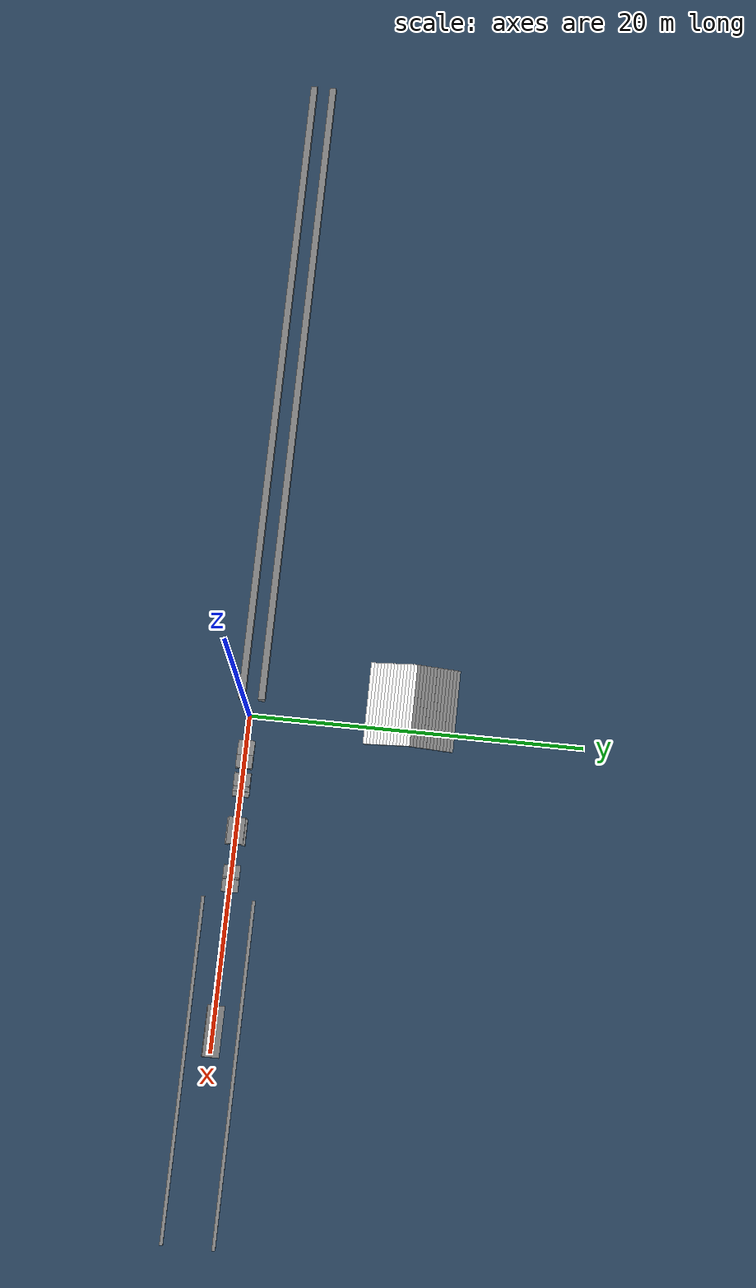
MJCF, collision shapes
<mujoco model="go2 scene">
  <include file="dog.xml"/>

  <statistic center="0 0 0.1" extent="0.8"/>

  <visual>
    <headlight diffuse="0.6 0.6 0.6" ambient="0.3 0.3 0.3" specular="0 0 0"/>
    <rgba haze="0.15 0.25 0.35 1"/>
    <global azimuth="-130" elevation="-20"/>
  </visual>

  <asset>
    <texture type="skybox" builtin="gradient" rgb1="0.3 0.5 0.7" rgb2="0 0 0" width="512" height="3072"/>
    <texture type="2d" name="groundplane" builtin="checker" mark="edge" rgb1="0.2 0.3 0.4" rgb2="0.1 0.2 0.3"
      markrgb="0.8 0.8 0.8" width="300" height="300"/>
    <material name="groundplane" texture="groundplane" texuniform="true" texrepeat="5 5" reflectance="0.2"/>

  </asset>

  <worldbody>
    <light pos="0 0 1.5" dir="0 0 -1" directional="true"/>
    <geom name="floor" size="0 0 0.05" type="plane" material="groundplane" friction="1 0.1 0.01"/>
    <!-- 场地 -->
    <geom pos="-21 0.6 0.04" type="box"  size="20 0.2 0.5" quat="1.0 0 0 0"/>
    <geom pos="-21 -0.6 0.04" type="box"  size="20 0.2 0.5" quat="1.0 0 0 0"/>
    <geom pos="21 1.5 0.04" type="box"  size="10 0.1 0.05" quat="1.0 0 0 0"/>
    <geom pos="21 -1.5 0.04" type="box"  size="10 0.1 0.05" quat="1.0 0 0 0"/>
    <!-- 竖杆 -->
    <!-- 匍匐架 -->
    <geom pos="7 0.5 0.02" type="box"  size="0.8 0.1 0.1" quat="1.0 0 0 0"/>
    <geom pos="7 0 0.4" type="box"  size="0.8 0.5 0.1" quat="1.0 0 0 0"/>
    <geom pos="7 -0.5 0.02" type="box"  size="0.8 0.1 0.1" quat="1.0 0 0 0"/>
    <!-- 高墙 -->
    <geom pos="9.8 0 0.02" type="box"  size="0.8 0.5 0.02" quat="1.0 0 0 0"/>
    <geom pos="9.8 0 0.02" type="box"  size="0.05 0.5 0.3" quat="1.0 0 0 0"/>
    <!-- 断桥 -->
    <geom pos="2. 0 -0.025" type="box"  size="0.5 0.5 0.2" quat="0.9848 0 -0.1604 0"  friction="1 0.1 0.01"/>
    <geom pos="2.8 0 0.02" type="box"  size="0.4 0.5 0.3" quat="1.0 0 0 0"  friction="1 0.1 0.01"/>
    <geom pos="3.9 0 0.02" type="box"  size="0.4 0.5 0.3" quat="1.0 0 0 0"  friction="1 0.1 0.01"/>
    <geom pos="4.45 0 0.02" type="box"  size="0.15 0.5 0.2" quat="1.0 0 0 0"  friction="1 0.1 0.01"/>
    <geom pos="4.75 0 0.02" type="box"  size="0.15 0.5 0.1" quat="1.0 0 0 0"  friction="1 0.1 0.01"/>

    <geom pos="18.75 0.01 -0.07" type="box"  size="1.5 0.5 0.17" quat="0.9945 -0.1045 0 0"/>
            <geom pos="-1.5 7 0.05" type="box" size="0.1 2.5 0.05" quat="0.707 0 0 0.707" rgba="1 1 1 0.8" />
    <geom pos="-1.5 7.2 0.1" type="box" size="0.1 2.5 0.05" quat="0.707 0 0 0.707" rgba="1 1 1 0.8"/>
    <geom pos="-1.5 7.4 0.15" type="box" size="0.1 2.5 0.05" quat="0.707 0 0 0.707" rgba="1 1 1 0.8"/>
    <geom pos="-1.5 7.6 0.2" type="box" size="0.1 2.5 0.05" quat="0.707 0 0 0.707" rgba="1 1 1 0.8"/>
    <geom pos="-1.5 7.8 0.25" type="box" size="0.1 2.5 0.05" quat="0.707 0 0 0.707" rgba="1 1 1 0.8"/>
    <geom pos="-1.5 8.0 0.3" type="box" size="0.1 2.5 0.05" quat="0.707 0 0 0.707" rgba="1 1 1 0.8"/>
    <geom pos="-1.5 8.2 0.35" type="box" size="0.1 2.5 0.05" quat="0.707 0 0 0.707" rgba="1 1 1 0.8"/>
    <geom pos="-1.5 8.4 0.4" type="box" size="0.1 2.5 0.05" quat="0.707 0 0 0.707" rgba="1 1 1 0.8"/>
    <geom pos="-1.5 8.6 0.45" type="box" size="0.1 2.5 0.05" quat="0.707 0 0 0.707" rgba="1 1 1 0.8"/>
    <geom pos="-1.5 8.8 0.5" type="box" size="0.1 2.5 0.05" quat="0.707 0 0 0.707" rgba="1 1 1 0.8"/>
    <geom pos="-1.5 9.0 0.55" type="box" size="0.1 2.5 0.05" quat="0.707 0 0 0.707" rgba="1 1 1 0.8"/>
    <geom pos="-1.5 9.2 0.6" type="box" size="0.1 2.5 0.05" quat="0.707 0 0 0.707" rgba="1 1 1 0.8"/>
    <geom pos="-1.5 9.4 0.65" type="box" size="0.1 2.5 0.05" quat="0.707 0 0 0.707" rgba="1 1 1 0.8"/>
    <geom pos="-1.5 9.6 0.7" type="box" size="0.1 2.5 0.05" quat="0.707 0 0 0.707" rgba="1 1 1 0.8"/>

    <geom pos="-1.5 9.6 0.7" type="box" size="0.1 2.5 0.05" quat="0.707 0 0 0.707" />
    <geom pos="-1.5 9.8 0.65" type="box" size="0.1 2.5 0.05" quat="0.707 0 0 0.707" />
    <geom pos="-1.5 10.0 0.6" type="box" size="0.1 2.5 0.05" quat="0.707 0 0 0.707" />
    <geom pos="-1.5 10.2 0.55" type="box" size="0.1 2.5 0.05" quat="0.707 0 0 0.707" />
    <geom pos="-1.5 10.4 0.5" type="box" size="0.1 2.5 0.05" quat="0.707 0 0 0.707" />
    <geom pos="-1.5 10.6 0.45" type="box" size="0.1 2.5 0.05" quat="0.707 0 0 0.707" />
    <geom pos="-1.5 10.8 0.4" type="box" size="0.1 2.5 0.05" quat="0.707 0 0 0.707" />
    <geom pos="-1.5 11.0 0.35" type="box" size="0.1 2.5 0.05" quat="0.707 0 0 0.707" />
    <geom pos="-1.5 11.2 0.3" type="box" size="0.1 2.5 0.05" quat="0.707 0 0 0.707" />
    <geom pos="-1.5 11.4 0.25" type="box" size="0.1 2.5 0.05" quat="0.707 0 0 0.707" />
    <geom pos="-1.5 11.6 0.2" type="box" size="0.1 2.5 0.05" quat="0.707 0 0 0.707" />
    <geom pos="-1.5 11.8 0.15" type="box" size="0.1 2.5 0.05" quat="0.707 0 0 0.707" />
    <geom pos="-1.5 12.0 0.1" type="box" size="0.1 2.5 0.05" quat="0.707 0 0 0.707" />
    <geom pos="-1.5 12.2 0.05" type="box" size="0.1 2.5 0.05" quat="0.707 0 0 0.707" />
  </worldbody>
</mujoco>

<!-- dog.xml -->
<mujoco model="dog">
  <compiler angle="radian" meshdir="assets" autolimits="true" />

  <option cone="elliptic" impratio="100" />
  <default>
    <default class="dog">
      <geom friction="0.4" margin="0.001" condim="1"/>
      <joint axis="0 1 0" damping="0.1" armature="0.01" frictionloss="0.2"/>
      <motor ctrlrange="-23.7 23.7"/>
      <default class="abduction">
        <joint axis="1 0 0" range="-1.0472 1.0472"/>
      </default>
      <default class="hip">
        <default class="front_hip">
          <joint range="-1.5708 3.4907"/>
        </default>
        <default class="back_hip">
          <joint range="-0.5236 4.5379"/>
        </default>
      </default>
      <default class="knee">
        <joint range="-2.7227 -0.83776"/>
        <motor ctrlrange="-45.43 45.43"/>
      </default>
      <default class="visual">
        <geom type="mesh" contype="0" conaffinity="0" group="2"/>
      </default>
      <default class="collision">
        <geom group="3"/>
        <default class="foot">
          <geom size="0.022" pos="-0.002 0 -0.213" priority="1" condim="6" friction="0.9 0.02 0.01"/>
        </default>
      </default>
    </default>
  </default>
  <asset>
    <mesh name="base" file="base.STL"/>
    <mesh name="FL_hip" file="FL_hip.STL"/>
    <mesh name="L_thigh" file="L_thigh.STL"/>
    <mesh name="calf" file="calf.STL"/>
    <mesh name="foot" file="foot.stl"/>
    <mesh name="FR_hip" file="FR_hip.STL"/>
    <mesh name="R_thigh" file="R_thigh.STL"/>
    <mesh name="RL_hip" file="RL_hip.STL"/>
    <mesh name="RR_hip" file="RR_hip.STL"/>
  </asset>

  <worldbody>
    <body name="base_link" pos="0 0 0.445" childclass="dog">
    <freejoint />
    <inertial pos="9.86379408949578E-05 -0.000228650036753486 -0.00925201672369771" quat="-0.000543471 0.713435 -0.00173769 0.700719"
        mass="9.5" diaginertia="0.109146 0.091188 0.0290862" />
    <geom type="mesh" contype="0" conaffinity="0" group="1" density="0" rgba="0.752941 0.752941 0.752941 1" mesh="base"/>

    <geom size="0.225 0.06 0.06" type="box" rgba="0.752941 0.752941 0.752941 1" class="collision"/>

    <site name='imu' size='0.01' pos='0.0 0 0.0'/>
    <body name="FL_hip" pos="0.22337 0.06 0">
      <inertial pos="-0.00478669 1.90134e-05 0.000220638" quat="0.543385 0.393149 0.59332 0.445126" mass="1.06948" diaginertia="0.000616962 0.00060064 0.000553598"/>
      <joint name="FL_hip_joint" pos="0 0 0" axis="1 0 0" range="-1 1" actuatorfrcrange="-20 20"/>
      <geom type="mesh" contype="0" conaffinity="0" group="1" density="0" rgba="0.752941 0.752941 0.752941 1" mesh="FL_hip" class="visual"/>
      <geom size="0.046 0.025" pos="0 0.09 0" quat="0.707107 0.707107 0 0" type="cylinder" rgba="0.752941 0.752941 0.752941 1" class="collision"/>
      <body name="FL_thigh" pos="0 0.1039 0">
        <inertial pos="-0.0023115 -0.0259576 -0.0356322" quat="0.992657 -0.109729 0.0350175 0.0369386" mass="1.55793" diaginertia="0.00600418 0.0059368 0.00120337"/>
        <joint name="FL_thigh_joint" pos="0 0 0" axis="0 1 0" range="-1.5 3" actuatorfrcrange="-20 20"/>
        <geom type="mesh" contype="0" conaffinity="0" group="1" density="0" rgba="0.752941 0.752941 0.752941 1" mesh="L_thigh"/>
        <geom size="0.055 0.01225 0.017" pos="0 0 -0.1065" quat="0.707107 0 0.707107 0" type="box" rgba="0.752941 0.752941 0.752941 1" class="collision"/>
        <body name="FL_calf" pos="0 0 -0.22">
          <inertial pos="0.00621509 -3.74074e-05 -0.131004" quat="0.707636 -0.00832079 -0.00797709 0.706483" mass="0.336118" diaginertia="0.00319573 0.00318278 5.01358e-05"/>
          <joint name="FL_calf_joint" pos="0 0 0" axis="0 1 0" range="-2.5 -0.85" actuatorfrcrange="-25 25"/>
          <geom type="mesh" contype="0" conaffinity="0" group="1" density="0" rgba="0.752941 0.752941 0.752941 1" mesh="calf"/>
          <geom size="0.0115 0.08" pos="0.008 0 -0.08" quat="0.99875 0 -0.0499792 0" type="cylinder" rgba="0.752941 0.752941 0.752941 1" class="collision"/>
          <geom size="0.011 0.025" pos="0.0172383 0 -0.184129" quat="0.99935 0 -0.0360572 0" type="cylinder" class="collision"/>
          <geom size="0.0155 0.016" pos="0.00980871 0 -0.219354" quat="0.979277 0 0.202524 0" type="cylinder" class="collision"/>
          <geom pos="0 0 -0.24" quat="1 0 0 0" type="mesh" contype="0" conaffinity="0" group="1" density="0" rgba="1 1 1 1" mesh="foot"/>
          <geom size="0.022" pos="-0.002 0 -0.24" rgba="1 1 1 1" class="foot"/>
        </body>
      </body>
    </body>
    <body name="FR_hip" pos="0.22337 -0.06 0">
      <inertial pos="0 0 0" quat="0.59332 0.445126 0.543385 0.393149" mass="1.06948" diaginertia="0.000616962 0.00060064 0.000553598"/>
      <joint name="FR_hip_joint" pos="0 0 0" axis="1 0 0" range="-1 1" actuatorfrcrange="-20 20"/>
      <geom type="mesh" contype="0" conaffinity="0" group="1" density="0" rgba="0.752941 0.752941 0.752941 1" mesh="FR_hip"/>
      <geom size="0.046 0.025" pos="0 -0.09 0" quat="0.707107 0.707107 0 0" type="cylinder" rgba="0.752941 0.752941 0.752941 1" class="collision"/>
      <body name="FR_thigh" pos="0 -0.1039 0">
        <inertial pos="-0.00102168 0.0347852 -0.0207384" quat="0.992657 -0.109729 0.0350175 0.0369386" mass="1.55793" diaginertia="0.00600418 0.0059368 0.00120337"/>
        <joint name="FR_thigh_joint" pos="0 0 0" axis="0 1 0" range="-1.5 3" actuatorfrcrange="-20 20"/>
        <geom type="mesh" contype="0" conaffinity="0" group="1" density="0" rgba="0.752941 0.752941 0.752941 1" mesh="R_thigh"/>
        <geom size="0.055 0.01225 0.017" pos="0 0 -0.1065" quat="0.707107 0 0.707107 0" type="box" rgba="0.752941 0.752941 0.752941 1" class="collision"/>
        <body name="FR_calf" pos="0 0 -0.22">
          <inertial pos="0.00621509 -3.74074e-05 -0.131004" quat="0.707636 -0.00832079 -0.00797709 0.706483" mass="0.336118" diaginertia="0.00319573 0.00318278 5.01358e-05"/>
          <joint name="FR_calf_joint" pos="0 0 0" axis="0 1 0" range="-2.5 -0.85" actuatorfrcrange="-25 25"/>
          <geom type="mesh" contype="0" conaffinity="0" group="1" density="0" rgba="0.752941 0.752941 0.752941 1" mesh="calf"/>
          <geom size="0.0115 0.08" pos="0.008 0 -0.08" quat="0.99875 0 -0.0499792 0" type="cylinder" rgba="0.752941 0.752941 0.752941 1" class="collision"/>
          <geom size="0.011 0.025" pos="0.0172383 0 -0.184129" quat="0.99935 0 -0.0360572 0" type="cylinder" class="collision"/>
          <geom size="0.0155 0.016" pos="0.00980871 0 -0.219354" quat="0.979277 0 0.202524 0" type="cylinder" class="collision"/>
          <geom pos="0 0 -0.24" quat="1 0 0 0" type="mesh" contype="0" conaffinity="0" group="1" density="0" rgba="1 1 1 1" mesh="foot"/>
          <geom size="0.022" pos="-0.002 0 -0.24" rgba="1 1 1 1" class="foot"/>
        </body>
      </body>
    </body>
    <body name="RL_hip" pos="-0.22337 0.06 0">
      <inertial pos="0.00478669 1.87933e-05 -0.000220657" quat="0.445371 0.593125 0.393326 0.54327" mass="1.06948" diaginertia="0.000616955 0.000600636 0.000553598"/>
      <joint name="RL_hip_joint" pos="0 0 0" axis="1 0 0" range="-1 1" actuatorfrcrange="-20 20"/>
      <geom type="mesh" contype="0" conaffinity="0" group="1" density="0" rgba="0.752941 0.752941 0.752941 1" mesh="RL_hip"/>
      <geom size="0.046 0.025" pos="0 0.09 0" quat="0.707107 0.707107 0 0" type="cylinder" rgba="0.752941 0.752941 0.752941 1" class="collision"/>
      <body name="RL_thigh" pos="0 0.1039 0">
        <inertial pos="-0.00245813 -0.0259576 -0.0351974" quat="0.990985 0.110735 0.0396787 -0.0641195" mass="1.55025" diaginertia="0.00570289 0.00563221 0.00120498"/>
        <joint name="RL_thigh_joint" pos="0 0 0" axis="0 1 0" range="-1.5 3" actuatorfrcrange="-20 20"/>
        <geom type="mesh" contype="0" conaffinity="0" group="1" density="0" rgba="0.752941 0.752941 0.752941 1" mesh="L_thigh"/>
        <geom size="0.055 0.01225 0.017" pos="0 0 -0.1065" quat="0.707107 0 0.707107 0" type="box" rgba="0.752941 0.752941 0.752941 1" class="collision"/>
        <body name="RL_calf" pos="0 0 -0.22">
          <inertial pos="0.00621509 -3.74074e-05 -0.131004" quat="0.707636 -0.00832079 -0.00797709 0.706483" mass="0.336118" diaginertia="0.00319573 0.00318278 5.01358e-05"/>
          <joint name="RL_calf_joint" pos="0 0 0" axis="0 1 0" range="-2.5 -0.85" actuatorfrcrange="-25 25"/>
          <geom type="mesh" contype="0" conaffinity="0" group="1" density="0" rgba="0.752941 0.752941 0.752941 1" mesh="calf"/>
          <geom size="0.0115 0.08" pos="0.008 0 -0.08" quat="0.99875 0 -0.0499792 0" type="cylinder" rgba="0.752941 0.752941 0.752941 1" class="collision"/>
          <geom size="0.011 0.025" pos="0.0172383 0 -0.184129" quat="0.99935 0 -0.0360572 0" type="cylinder" class="collision"/>
          <geom size="0.0155 0.016" pos="0.00980871 0 -0.219354" quat="0.979277 0 0.202524 0" type="cylinder" class="collision"/>
          <geom pos="0 0 -0.24" quat="1 0 0 0" type="mesh" contype="0" conaffinity="0" group="1" density="0" rgba="1 1 1 1" mesh="foot"/>
          <geom size="0.022" pos="-0.002 0 -0.24" rgba="1 1 1 1" class="foot"/>
        </body>
      </body>
    </body>
    <body name="RR_hip" pos="-0.22337 -0.06 0">
      <inertial pos="0 0 0" quat="0.393382 0.543235 0.445412 0.593089" mass="1.06948" diaginertia="0.000616964 0.000600637 0.000553599"/>
      <joint name="RR_hip_joint" pos="0 0 0" axis="1 0 0" range="-1 1" actuatorfrcrange="-20 20"/>
      <geom type="mesh" contype="0" conaffinity="0" group="1" density="0" rgba="1 1 1 1" mesh="RR_hip"/>
      <geom size="0.046 0.025" pos="0 -0.09 0" quat="0.707107 0.707107 0 0" type="cylinder" rgba="1 1 1 1" class="collision"/>
      <body name="RR_thigh" pos="0 -0.1039 0">
        <inertial pos="-0.000904252 0.0347851 -0.0209699" quat="0.99094 -0.11144 0.0403121 0.0632004" mass="1.55005" diaginertia="0.00570564 0.00563926 0.00120469"/>
        <joint name="RR_thigh_joint" pos="0 0 0" axis="0 1 0" range="-1.5 3" actuatorfrcrange="-20 20"/>
        <geom type="mesh" contype="0" conaffinity="0" group="1" density="0" rgba="0.752941 0.752941 0.752941 1" mesh="R_thigh"/>
        <geom size="0.055 0.01225 0.017" pos="0 0 -0.1065" quat="0.707107 0 0.707107 0" type="box" rgba="0.752941 0.752941 0.752941 1" class="collision"/>
        <body name="RR_calf" pos="0 0 -0.22">
          <inertial pos="0.00624462 -3.74074e-05 -0.131053" quat="0.70761 -0.00840943 -0.00806572 0.706507" mass="0.336118" diaginertia="0.00319826 0.00318522 5.02364e-05"/>
          <joint name="RR_calf_joint" pos="0 0 0" axis="0 1 0" range="-2.5 -0.85" actuatorfrcrange="-25 25"/>
          <geom type="mesh" contype="0" conaffinity="0" group="1" density="0" rgba="0.752941 0.752941 0.752941 1" mesh="calf"/>
          <geom size="0.0115 0.08" pos="0.008 0 -0.08" quat="0.99875 0 -0.0499792 0" type="cylinder" rgba="0.752941 0.752941 0.752941 1" class="collision"/>
          <geom size="0.011 0.025" pos="0.0174683 0 -0.184509" quat="0.99935 0 -0.0360572 0" type="cylinder" class="collision"/>
          <geom size="0.0155 0.016" pos="0.0100387 0 -0.219734" quat="0.979277 0 0.202524 0" type="cylinder" class="collision"/>
          <geom pos="0 0 -0.24" quat="1 0 0 0" type="mesh" contype="0" conaffinity="0" group="1" density="0" rgba="1 1 1 1" mesh="foot"/>
          <geom size="0.022" pos="-0.002 0 -0.24" rgba="1 1 1 1" class="foot"/>
        </body>
      </body>
      </body>

    </body>
  </worldbody>
  <actuator>

    <motor name="FL_hip_joint" joint="FL_hip_joint" gear="1" ctrllimited="true" ctrlrange="-20 20"/>
		<motor name="FL_thigh_joint" joint="FL_thigh_joint" gear="1" ctrllimited="true" ctrlrange="-20 20"/>
		<motor name="FL_calf_joint" joint="FL_calf_joint" gear="1" ctrllimited="true" ctrlrange="-25 25"/>

		<motor name="FR_hip_joint" joint="FR_hip_joint" gear="1" ctrllimited="true" ctrlrange="-20 20"/>
		<motor name="FR_thigh_joint" joint="FR_thigh_joint" gear="1" ctrllimited="true" ctrlrange="-20 20"/>
		<motor name="FR_calf_joint" joint="FR_calf_joint" gear="1" ctrllimited="true" ctrlrange="-25 25"/>

    <motor name="RL_hip_joint" joint="RL_hip_joint" gear="1" ctrllimited="true" ctrlrange="-20 20"/>
		<motor name="RL_thigh_joint" joint="RL_thigh_joint" gear="1" ctrllimited="true" ctrlrange="-20 20"/>
		<motor name="RL_calf_joint" joint="RL_calf_joint" gear="1" ctrllimited="true" ctrlrange="-25 25"/>

		<motor name="RR_hip_joint" joint="RR_hip_joint" gear="1" ctrllimited="true" ctrlrange="-20 20"/>
		<motor name="RR_thigh_joint" joint="RR_thigh_joint" gear="1" ctrllimited="true" ctrlrange="-20 20"/>
		<motor name="RR_calf_joint" joint="RR_calf_joint" gear="1" ctrllimited="true" ctrlrange="-25 25"/>

  </actuator>
  <sensor>
    <jointpos name="FL_hip_pos" joint="FL_hip_joint" />
    <jointpos name="FL_thigh_pos" joint="FL_thigh_joint" />
    <jointpos name="FL_calf_pos" joint="FL_calf_joint" />
    <jointpos name="FR_hip_pos" joint="FR_hip_joint" />
    <jointpos name="FR_thigh_pos" joint="FR_thigh_joint" />
    <jointpos name="FR_calf_pos" joint="FR_calf_joint" />
    <jointpos name="RL_hip_pos" joint="RL_hip_joint" />
    <jointpos name="RL_thigh_pos" joint="RL_thigh_joint" />
    <jointpos name="RL_calf_pos" joint="RL_calf_joint" />
    <jointpos name="RR_hip_pos" joint="RR_hip_joint" />
    <jointpos name="RR_thigh_pos" joint="RR_thigh_joint" />
    <jointpos name="RR_calf_pos" joint="RR_calf_joint" />

    <jointvel name="FL_hip_vel" joint="FL_hip_joint" />
    <jointvel name="FL_thigh_vel" joint="FL_thigh_joint" />
    <jointvel name="FL_calf_vel" joint="FL_calf_joint" />
    <jointvel name="FR_hip_vel" joint="FR_hip_joint" />
    <jointvel name="FR_thigh_vel" joint="FR_thigh_joint" />
    <jointvel name="FR_calf_vel" joint="FR_calf_joint" />
    <jointvel name="RL_hip_vel" joint="RL_hip_joint" />
    <jointvel name="RL_thigh_vel" joint="RL_thigh_joint" />
    <jointvel name="RL_calf_vel" joint="RL_calf_joint" />
    <jointvel name="RR_hip_vel" joint="RR_hip_joint" />
    <jointvel name="RR_thigh_vel" joint="RR_thigh_joint" />
    <jointvel name="RR_calf_vel" joint="RR_calf_joint" />

    <jointactuatorfrc name="FL_hip_torque" joint="FL_hip_joint" noise="0.01" />
    <jointactuatorfrc name="FL_thigh_torque" joint="FL_thigh_joint" noise="0.01" />
    <jointactuatorfrc name="FL_calf_torque" joint="FL_calf_joint" noise="0.01" />
    <jointactuatorfrc name="FR_hip_torque" joint="FR_hip_joint" noise="0.01" />
    <jointactuatorfrc name="FR_thigh_torque" joint="FR_thigh_joint" noise="0.01" />
    <jointactuatorfrc name="FR_calf_torque" joint="FR_calf_joint" noise="0.01" />
    <jointactuatorfrc name="RL_hip_torque" joint="RL_hip_joint" noise="0.01" />
    <jointactuatorfrc name="RL_thigh_torque" joint="RL_thigh_joint" noise="0.01" />
    <jointactuatorfrc name="RL_calf_torque" joint="RL_calf_joint" noise="0.01" />

    <jointactuatorfrc name="RR_hip_torque" joint="RR_hip_joint" noise="0.01" />
    <jointactuatorfrc name="RR_thigh_torque" joint="RR_thigh_joint" noise="0.01" />
    <jointactuatorfrc name="RR_calf_torque" joint="RR_calf_joint" noise="0.01" />

    <framequat     name='orientation' objtype='site' noise='0.001' objname='imu'/>
    <framepos      name='position' objtype='site' noise='0.001' objname='imu'/>
    <framelinvel  name="base_lin_vel" objtype="site" objname="imu" />
    <gyro          name='angular-velocity'    site='imu' noise='0.005' cutoff='34.9'/>
    <velocimeter   name='linear-velocity'     site='imu' noise='0.001' cutoff='30'/>
    <accelerometer name='linear-acceleration' site='imu' noise='0.005' cutoff='157'/>
    <magnetometer  name='magnetometer'        site='imu'/>

  </sensor>

  <keyframe>
    <key name="home" qpos="0 0 0.27 1 0 0 0 0 -0.9 -1.5 0 -0.9 -1.5 0 0.9 -1.5 0 0.9 -1.5"
      ctrl="0 0.9 -1.8 0 0.9 -1.8 0 0.9 -1.8 0 0.9 -1.8" />
  </keyframe>
</mujoco>
